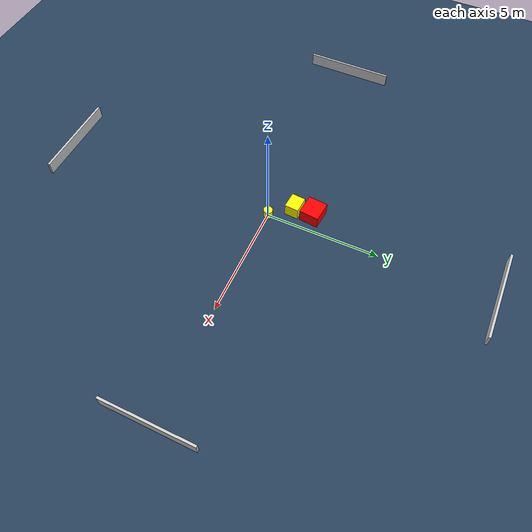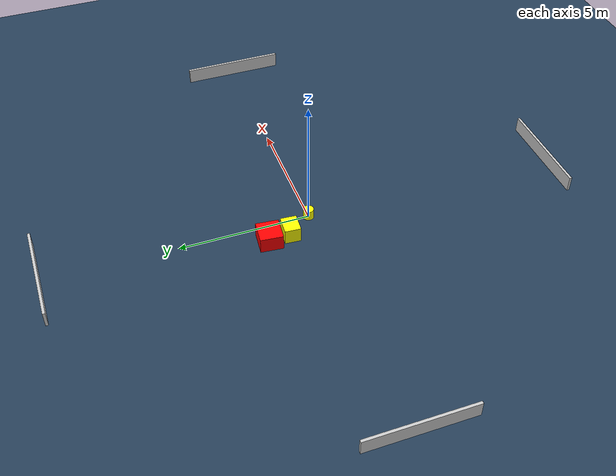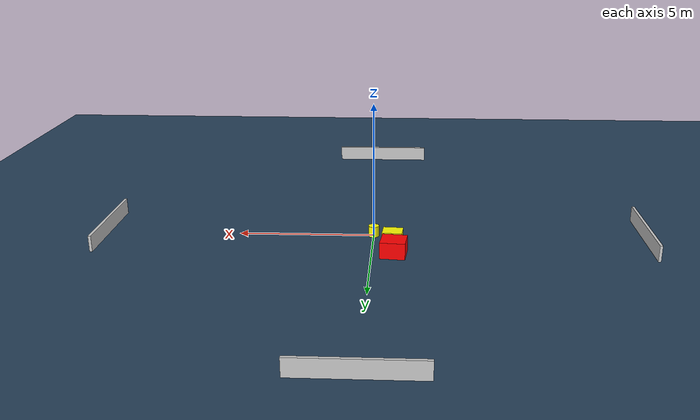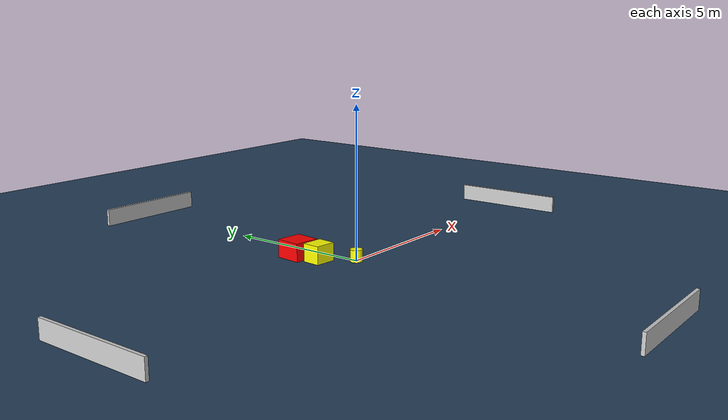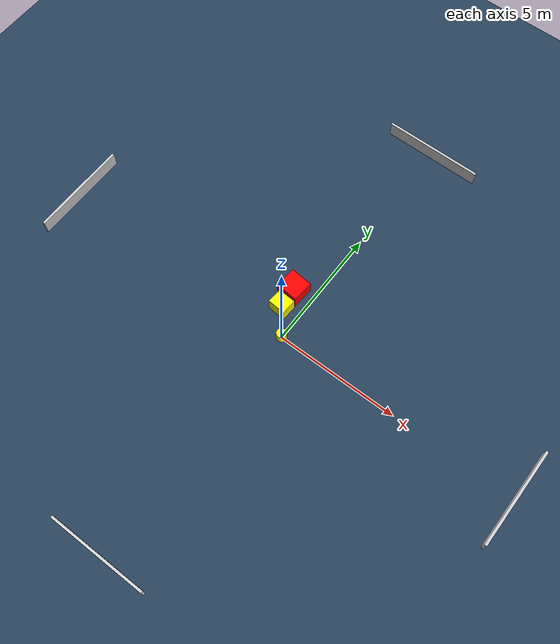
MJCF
<?xml version="1.0" ?>
<mujoco model="generated_environment">
  <option timestep="0.01" integrator="RK4" cone="elliptic"/>
  <default>
    <geom density="1"/>
  </default>
  <asset>
    <texture builtin="gradient" height="3072" name="skybox" rgb1="0.3 0.5 0.7" rgb2="0 0 0" type="skybox" width="512"/>
    <texture builtin="checker" height="300" name="groundplane" rgb1="0.2 0.3 0.4" rgb2="0.1 0.2 0.3" type="2d" width="300"/>
    <material name="groundplane" reflectance="0.2" texrepeat="5 5" texture="groundplane"/>
  </asset>
  <worldbody>
    <light dir="0 0 -1" directional="true" pos="0 0 1.5"/>
    <geom condim="3" friction="0.5 0.005 0.001" material="groundplane" name="floor" pos="0 0 0" size="0 0 0.05" type="plane"/>
    <body name="walls">
      <geom name="wall_1" condim="4" pos="-10.0 0.0 0.3" rgba="0.800000011920929 0.800000011920929 0.800000011920929 1.0" size="0.05 2.0 0.3" type="box"/>
      <geom name="wall_2" condim="4" pos="10.0 0.0 0.3" rgba="0.800000011920929 0.800000011920929 0.800000011920929 1.0" size="0.05 2.0 0.3" type="box"/>
      <geom name="wall_3" condim="4" pos="0.0 -10.0 0.3" rgba="0.800000011920929 0.800000011920929 0.800000011920929 1.0" size="2.0 0.05 0.3" type="box"/>
      <geom name="wall_4" condim="4" pos="0.0 10.0 0.3" rgba="0.800000011920929 0.800000011920929 0.800000011920929 1.0" size="2.0 0.05 0.3" type="box"/>
    </body>
    <body name="robot">
      <joint name="joint_x" type="slide" pos="0 0 0" axis="1 0 0"/>
      <joint name="joint_y" type="slide" pos="0 0 0" axis="0 1 0"/>
      <geom name="robot" type="cylinder" pos="0.0 0.0 0.2" size="0.2 0.2 0.0" mass="5.0" friction="1.0 0.005 0.0001" condim="4" rgba="1.0 1.0 0.0 1.0"/>
    </body>
    <body name="obstacle_1_movable">
      <geom name="obstacle_1_movable" condim="4" pos="-0.7214578039479462 0.9516265483224703 0.3" euler="0 0 265.64913983279996" friction="0.0 0.005 0.001" rgba="1.0 1.0 0.0 1.0" size="0.30506069062961366 0.3594120507380423 0.3" type="box" mass="0.1"/>
      <joint type="free"/>
    </body>
    <body name="obstacle_2_static">
      <geom name="obstacle_2_static" condim="4" pos="-0.7760442350557607 1.7812236734504665 0.3" euler="0 0 354.37349884827586" friction="0.0 0.005 0.001" rgba="1.0 0.0 0.0 1.0" size="0.4488784783693934 0.4313758328751217 0.3" type="box"/>
    </body>
  </worldbody>
  <actuator>
    <motor name="actuator_x" joint="joint_x" gear="1" ctrlrange="-1 1"/>
    <motor name="actuator_y" joint="joint_y" gear="1" ctrlrange="-1 1"/>
  </actuator>
</mujoco>
